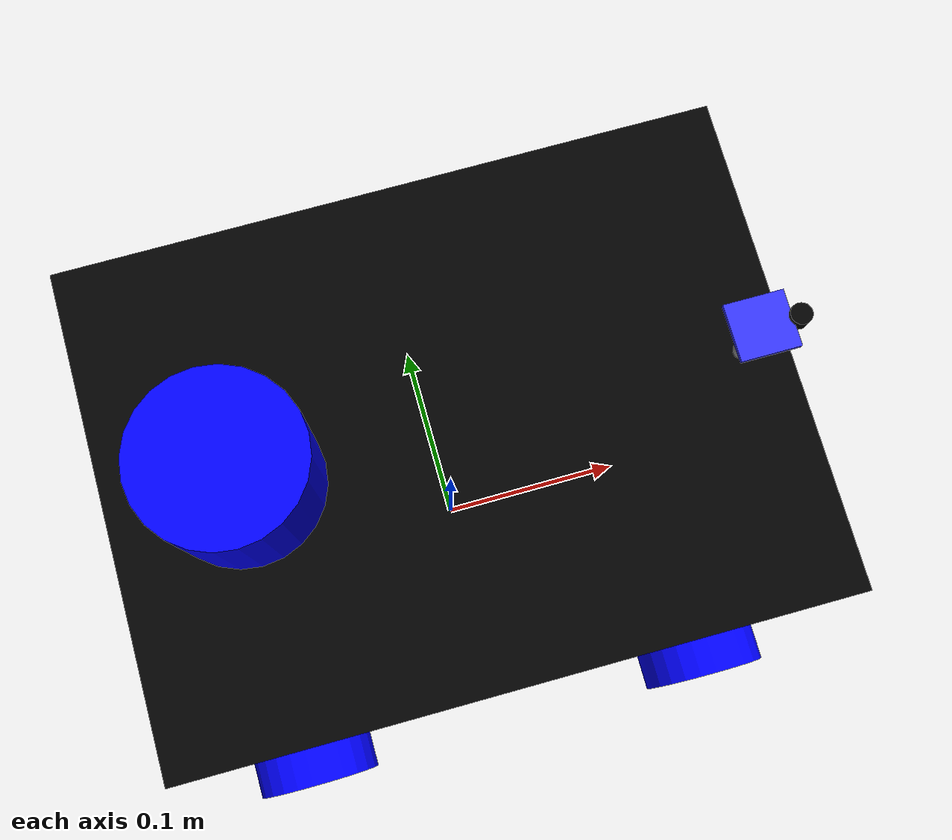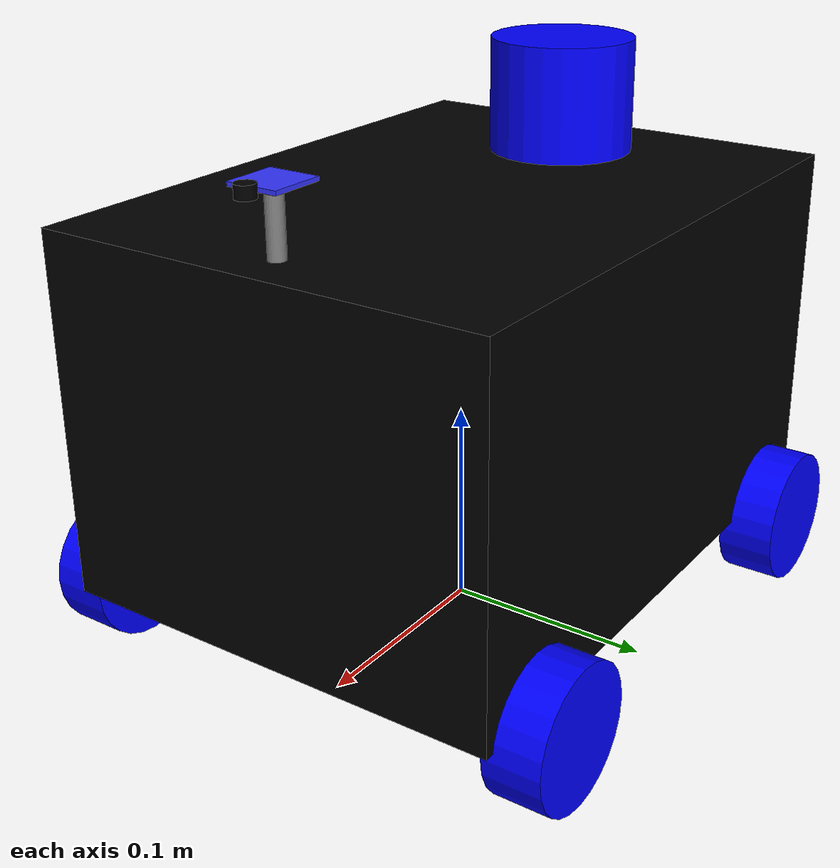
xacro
<?xml version="1.0"?>
<robot xmlns:xacro="http://www.ros.org/wiki/xacro"  name="robot">

    <xacro:arg name="use_ros2_control" default="true"/>
    <xacro:arg name="sim_mode" default="false"/>
    <xacro:arg name="include_arm" default="false"/>
    <xacro:arg name="controllers_file" default="$(find articubot_one)/config/my_controllers.yaml"/>

    <xacro:include filename="common_properties.xacro" />

    <xacro:include filename="robot_core.xacro" />

    <xacro:property name="imu_offset_x" value="0.0"/>
    <xacro:property name="imu_offset_z" value="${chassis_height/2}"/>
    <xacro:property name="imu_visual_size" value="0.02"/>
    <xacro:include filename="imu.xacro" />

    <xacro:include filename="lidar.xacro" />

    <!-- Camera mount: front of chassis and slightly above top surface. -->
    <xacro:property name="camera_offset_x" value="${(chassis_length / 2.0) - 0.02}"/>
    <xacro:property name="camera_offset_z" value="${chassis_height + 0.032}"/>
    <xacro:include filename="camera.xacro" />

    <xacro:if value="$(arg include_arm)">
        <xacro:include filename="arm.xacro" />
    </xacro:if>
    <xacro:include filename="ros2_control.xacro" />

</robot>

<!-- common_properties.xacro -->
<robot name="xacro_properties" xmlns:xacro="http://ros.org/wiki/xacro">

    <xacro:arg name="sim_mode" default="false"/>

    <material name="white">
        <color rgba="1 1 1 1" />
    </material>

    <material name="black">
        <color rgba="0 0 0 1"/>
    </material>

    <material name="red">
        <color rgba="1 0 0 1"/>
    </material>

    <material name="orange">
        <color rgba="1 0.3 0.1 1"/>
    </material>

    <material name="green">
        <color rgba="0 1 0 1"/>
    </material>

    <material name="blue">
        <color rgba="0 0 1 1"/>
    </material>

    <material name="grey">
        <color rgba="0.5 0.5 0.5 1"/>
    </material>

    <material name="shadow_grey">
        <color rgba="0.3 0.3 0.3 0.5"/>
    </material>

    <material name="sensor_blue">
        <color rgba="0.2 0.2 1 1"/>
    </material>

    <material name="sensor_yellow">
        <color rgba="0.8 0.8 0.2 1"/>
    </material>

    <material name="body_color">
        <color rgba="0.1 0.1 0.1 1"/> </material>

    <material name="port_red">
        <color rgba="1 0.2 0.2 1"/>
    </material>

    <material name="starboard_green">
        <color rgba="0.2 1 0.2 1"/>
    </material>

</robot>

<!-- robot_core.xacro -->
<robot xmlns:xacro="http://www.ros.org/wiki/xacro" >
    <xacro:include filename="inertial_macros.xacro" />
    <!-- Real hardware body size (base plate). -->
    <xacro:property name="chassis_length" value="0.293"/>
    <!-- Base plate width (no wheels). -->
    <xacro:property name="chassis_width" value="0.22"/>
    <!-- Top of base is ~0.21 m above ground. -->
    <xacro:property name="chassis_height" value="0.1735"/>
    <xacro:property name="chassis_mass" value="3.0"/>
    <xacro:property name="wheel_radius" value="0.0325"/>
    <xacro:property name="wheel_thickness" value="0.027"/>
    <xacro:property name="wheel_mass" value="0.2"/>
    <!-- Wheelbase 0.22 m -> half is 0.11 m. -->
    <xacro:property name="wheel_offset_x" value="0.11"/>
    <!-- Wheel separation 0.236 m -> half is 0.118 m. -->
    <xacro:property name="wheel_offset_y" value="0.118"/>
    <xacro:property name="chassis_ground_clearance" value="0.004"/>

    <link name="base_link"></link>

    <joint name="chassis_joint" type="fixed">
        <parent link="base_link"/>
        <child link="chassis"/>
        <origin xyz="0 0 ${wheel_radius + chassis_ground_clearance}"/>
    </joint>

    <link name="chassis">
        <visual>
            <origin xyz="0 0 ${chassis_height/2}"/>
            <geometry><box size="${chassis_length} ${chassis_width} ${chassis_height}"/></geometry>
            <material name="black"/>
        </visual>
        <collision>
            <origin xyz="0 0 ${chassis_height/2}"/>
            <geometry><box size="${chassis_length} ${chassis_width} ${chassis_height}"/></geometry>
        </collision>
        <xacro:inertial_box mass="${chassis_mass}" x="${chassis_length}" y="${chassis_width}" z="${chassis_height}">
            <origin xyz="0 0 ${chassis_height/2}" rpy="0 0 0"/>
        </xacro:inertial_box>
    </link>

    <xacro:macro name="wheel" params="prefix x_reflect y_reflect">
        <joint name="${prefix}_wheel_joint" type="continuous">
            <parent link="base_link"/>
            <child link="${prefix}_wheel"/>
            <origin xyz="${x_reflect*wheel_offset_x} ${y_reflect*wheel_offset_y} ${wheel_radius}" rpy="${-pi/2} 0 0" />
            <axis xyz="0 0 1"/>
            <dynamics damping="0.2" friction="0.05"/>
        </joint>
        <link name="${prefix}_wheel">
            <visual>
                <geometry><cylinder radius="${wheel_radius}" length="${wheel_thickness}"/></geometry>
                <material name="blue"/>
            </visual>
            <collision>
                <geometry><cylinder radius="${wheel_radius}" length="${wheel_thickness}"/></geometry>
            </collision>
            <xacro:inertial_cylinder mass="${wheel_mass}" length="${wheel_thickness}" radius="${wheel_radius}">
                <origin xyz="0 0 0" rpy="0 0 0"/>
            </xacro:inertial_cylinder>
        </link>
        <gazebo reference="${prefix}_wheel">
            <material>Gazebo/Blue</material>
            <!-- Skid-steer tuning: allow controlled lateral slip so turning matches odometry better. -->
            <mu1>0.7</mu1>
            <mu2>0.5</mu2>
            <slip1>0.02</slip1>
            <slip2>0.12</slip2>
            <kp>1000000.0</kp>
            <kd>1.0</kd>
        </gazebo>
    </xacro:macro>

    <xacro:wheel prefix="front_left" x_reflect="1" y_reflect="1" />
    <xacro:wheel prefix="front_right" x_reflect="1" y_reflect="-1" />
    <xacro:wheel prefix="rear_left" x_reflect="-1" y_reflect="1" />
    <xacro:wheel prefix="rear_right" x_reflect="-1" y_reflect="-1" />

    <gazebo reference="chassis"><material>Gazebo/Black</material></gazebo>

</robot>

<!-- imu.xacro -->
<robot xmlns:xacro="http://www.ros.org/wiki/xacro" >

    <joint name="imu_joint" type="fixed">
        <parent link="chassis"/>
        <child link="imu_link"/>
        <origin xyz="${imu_offset_x} 0 ${imu_offset_z}" rpy="0 0 0"/>
    </joint>

    <link name="imu_link">
        <visual>
            <geometry>
                <box size="${imu_visual_size} ${imu_visual_size} ${imu_visual_size}"/>
            </geometry>
            <material name="sensor_blue"/>
        </visual>
        <collision>
            <geometry>
                <box size="${imu_visual_size} ${imu_visual_size} ${imu_visual_size}"/>
            </geometry>
        </collision>
        <xacro:inertial_box mass="0.01" x="${imu_visual_size}" y="${imu_visual_size}" z="${imu_visual_size}">
            <origin xyz="0 0 0" rpy="0 0 0"/>
        </xacro:inertial_box>
    </link>

    <gazebo reference="imu_link">
        <sensor name="imu_link" type="imu">
        <pose>0 0 0 0 0 0</pose>
        <always_on>1</always_on>

        <topic>gz_imu/data</topic>

        <gz_frame_id>imu_link</gz_frame_id>
        <frame_id>imu_link</frame_id>
        <update_rate>250</update_rate>
            <imu>
                <orientation_reference_frame>
                  <localization>ENU</localization>
                  </orientation_reference_frame>
                <enable_orientation>1</enable_orientation>
                <angular_velocity>
                    <x>
                        <noise type="gaussian">
                            <mean>0</mean>
                            <stddev>0.009</stddev>
                            <bias_mean>0.00075</bias_mean>
                            <bias_stddev>0.005</bias_stddev>
                            <dynamic_bias_stddev>0.00002</dynamic_bias_stddev>
                            <dynamic_bias_correlation_time>400.0</dynamic_bias_correlation_time>
                            <precision>0.00025</precision>
                        </noise>
                    </x>
                    <y>
                        <noise type="gaussian">
                            <mean>0</mean>
                            <stddev>0.009</stddev>
                            <bias_mean>0.00075</bias_mean>
                            <bias_stddev>0.005</bias_stddev>
                            <dynamic_bias_stddev>0.00002</dynamic_bias_stddev>
                            <dynamic_bias_correlation_time>400.0</dynamic_bias_correlation_time>
                            <precision>0.00025</precision>
                        </noise>
                    </y>
                    <z>
                        <noise type="gaussian">
                            <mean>0</mean>
                            <stddev>0.009</stddev>
                            <bias_mean>0.00075</bias_mean>
                            <bias_stddev>0.005</bias_stddev>
                            <dynamic_bias_stddev>0.00002</dynamic_bias_stddev>
                            <dynamic_bias_correlation_time>400.0</dynamic_bias_correlation_time>
                            <precision>0.00025</precision>
                        </noise>
                    </z>
                </angular_velocity>
                <linear_acceleration>
                    <x>
                        <noise type="gaussian">
                            <mean>0</mean>
                            <stddev>0.021</stddev>
                            <bias_mean>0.05</bias_mean>
                            <bias_stddev>0.0075</bias_stddev>
                            <dynamic_bias_stddev>0.000375</dynamic_bias_stddev>
                            <dynamic_bias_correlation_time>175.0</dynamic_bias_correlation_time>
                            <precision>0.005</precision>
                        </noise>
                    </x>
                    <y>
                        <noise type="gaussian">
                            <mean>0</mean>
                            <stddev>0.021</stddev>
                            <bias_mean>0.05</bias_mean>
                            <bias_stddev>0.0075</bias_stddev>
                            <dynamic_bias_stddev>0.000375</dynamic_bias_stddev>
                            <dynamic_bias_correlation_time>175.0</dynamic_bias_correlation_time>
                            <precision>0.005</precision>
                        </noise>
                    </y>
                    <z>
                        <noise type="gaussian">
                            <mean>0</mean>
                            <stddev>0.021</stddev>
                            <bias_mean>0.05</bias_mean>
                            <bias_stddev>0.0075</bias_stddev>
                            <dynamic_bias_stddev>0.000375</dynamic_bias_stddev>
                            <dynamic_bias_correlation_time>175.0</dynamic_bias_correlation_time>
                            <precision>0.005</precision>
                        </noise>
                    </z>
                </linear_acceleration>
            </imu>
        </sensor>

        <sensor name="magnetometer" type="magnetometer">
          <pose>0 0 0 0 0 0</pose>
          <always_on>1</always_on>
          <update_rate>100</update_rate>
          <visualize>true</visualize>
          <topic>gz_magnetometer/data</topic>
          <gz_frame_id>imu_link</gz_frame_id>
          <frame_id>imu_link</frame_id>
          <enable_metrics>true</enable_metrics>
          <magnetometer>
            <x>
              <noise type="gaussian">
                <mean>0.0</mean>
                <stddev>0.001</stddev>
              </noise>
            </x>
            <y>
              <noise type="gaussian">
                <mean>0.0</mean>
                <stddev>0.001</stddev>
              </noise>
            </y>
            <z>
              <noise type="gaussian">
                <mean>0.0</mean>
                <stddev>0.001</stddev>
              </noise>
            </z>
          </magnetometer>
        </sensor>
    </gazebo>

</robot>

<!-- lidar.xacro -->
<robot xmlns:xacro="http://www.ros.org/wiki/xacro" >

    <xacro:arg name="lidar_offset_x" default="-0.0885"/>
    <xacro:arg name="lidar_offset_y" default="0.0"/>
    <!-- Relative height above chassis top (meters), to LiDAR center. -->
    <xacro:arg name="lidar_offset_z" default="0.0275"/>
    <!-- Yaw of the physical LiDAR mounting relative to the robot front. -->
    <xacro:arg name="lidar_yaw" default="0.0"/>
    <xacro:arg name="lidar_min_angle" default="-3.14159"/>
    <xacro:arg name="lidar_max_angle" default="3.14159"/>
    <xacro:property name="lidar_offset_x_val" value="$(arg lidar_offset_x)"/>
    <xacro:property name="lidar_offset_y_val" value="$(arg lidar_offset_y)"/>
    <xacro:property name="lidar_offset_z_val" value="$(arg lidar_offset_z)"/>
    <xacro:property name="lidar_yaw_val" value="$(arg lidar_yaw)"/>
    <!-- RPLidar A1 physical envelope from provided dimensions: 70mm diameter, ~55mm height. -->
    <xacro:property name="lidar_body_radius" value="0.035"/>
    <xacro:property name="lidar_body_height" value="0.055"/>
    <xacro:property name="lidar_body_mass" value="0.17"/>

    <joint name="laser_joint" type="fixed">
        <parent link="chassis"/>
        <child link="laser_frame"/>
        <origin xyz="${lidar_offset_x_val} ${lidar_offset_y_val} ${chassis_height + lidar_offset_z_val}" rpy="0 0 ${lidar_yaw_val}"/>
    </joint>
    <gazebo reference="laser_joint">
    <preserveFixedJoint>true</preserveFixedJoint>
    </gazebo>

    <link name="laser_frame">
        <visual>
            <geometry>
                <cylinder radius="${lidar_body_radius}" length="${lidar_body_height}"/>
            </geometry>
            <material name="blue"/>
        </visual>
        <collision>
            <geometry>
                <cylinder radius="${lidar_body_radius}" length="${lidar_body_height}"/>
            </geometry>
        </collision>
        <xacro:inertial_cylinder mass="${lidar_body_mass}" length="${lidar_body_height}" radius="${lidar_body_radius}">
            <origin xyz="0 0 0" rpy="0 0 0"/>
        </xacro:inertial_cylinder>
    </link>

    <gazebo reference="laser_frame">
        <material>Gazebo/Blue</material>
    </gazebo>

    <gazebo reference="laser_frame">
        <sensor name='laser_sensor' type='gpu_lidar'>
          <pose>0 0 0 0 0 0</pose>
          <always_on>1</always_on>
          <!-- Stable sim profile for mapping: more temporal samples during turns. -->
          <update_rate>12.0</update_rate>
          <topic>/scan</topic>
          <gz_frame_id>laser_frame</gz_frame_id>
          <frame_id>laser_frame</frame_id>
          <visualize>false</visualize> <ray>
            <scan>
              <horizontal>
                <!-- 360 samples/scan @ 12Hz gives cleaner scan matching during turns. -->
                <samples>360</samples>
                <resolution>1</resolution>
                <min_angle>$(arg lidar_min_angle)</min_angle>
                <max_angle>$(arg lidar_max_angle)</max_angle>
              </horizontal>
            </scan>
            <range>
              <min>0.15</min> <max>6.0</max>
              <resolution>0.01</resolution>
            </range>
            <noise>
              <type>gaussian</type>
              <mean>0.0</mean>
              <stddev>0.005</stddev>
            </noise>
          </ray>
        </sensor>
    </gazebo>

</robot>

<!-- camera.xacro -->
<robot xmlns:xacro="http://www.ros.org/wiki/xacro" >
    <!-- Raspberry Pi Camera v2.1 approximate body dimensions. -->
    <xacro:property name="pi_cam_board_x" value="0.025"/>
    <xacro:property name="pi_cam_board_y" value="0.024"/>
    <xacro:property name="pi_cam_board_z" value="0.002"/>
    <xacro:property name="pi_cam_lens_radius" value="0.0045"/>
    <xacro:property name="pi_cam_lens_length" value="0.006"/>
    <xacro:property name="pi_cam_support_radius" value="0.004"/>
    <xacro:property name="pi_cam_support_length" value="0.030"/>

    <joint name="camera_joint" type="fixed">
      <parent link="chassis"/>
         <child link="camera_link"/>
         <origin xyz="${camera_offset_x} 0 ${camera_offset_z}" rpy="0 0 0"/>
    </joint>

    <link name="camera_link">
        <visual>
            <geometry>
                <box size="${pi_cam_board_x} ${pi_cam_board_y} ${pi_cam_board_z}"/>
            </geometry>
            <material name="blue">
                 <color rgba="0.2 0.2 1 1"/>
            </material>
        </visual>
        <visual>
            <origin xyz="${pi_cam_board_x/2 + pi_cam_lens_length/2} 0 0"/>
            <geometry>
                <cylinder radius="${pi_cam_lens_radius}" length="${pi_cam_lens_length}"/>
            </geometry>
            <material name="black"/>
        </visual>
        <visual>
            <origin xyz="0 0 ${-(pi_cam_support_length/2 + pi_cam_board_z/2)}"/>
            <geometry>
                <cylinder radius="${pi_cam_support_radius}" length="${pi_cam_support_length}"/>
            </geometry>
            <material name="grey"/>
        </visual>
        <collision>
            <geometry>
                <box size="${pi_cam_board_x} ${pi_cam_board_y} ${pi_cam_board_z}"/>
            </geometry>
        </collision>
        <collision>
            <origin xyz="${pi_cam_board_x/2 + pi_cam_lens_length/2} 0 0"/>
            <geometry>
                <cylinder radius="${pi_cam_lens_radius}" length="${pi_cam_lens_length}"/>
            </geometry>
        </collision>
        <collision>
            <origin xyz="0 0 ${-(pi_cam_support_length/2 + pi_cam_board_z/2)}"/>
            <geometry>
                <cylinder radius="${pi_cam_support_radius}" length="${pi_cam_support_length}"/>
            </geometry>
        </collision>
        <xacro:inertial_box mass="0.01" x="${pi_cam_board_x}" y="${pi_cam_board_y}" z="${pi_cam_board_z}">
            <origin xyz="0 0 0" rpy="0 0 0"/>
        </xacro:inertial_box>
    </link>

    <joint name="camera_optical_joint" type="fixed">
        <parent link="camera_link"/>
        <child link="camera_link_optical"/>
        <origin xyz="0 0 0" rpy="${-pi/2} 0 ${-pi/2}"/>
    </joint>

    <link name="camera_link_optical">
    </link>

    <gazebo reference="camera_link">
        <sensor name='rgb_camera' type='camera'>
            <pose>0 0 0 0 0 0</pose>
            <visualize>true</visualize>
            <update_rate>10</update_rate>

            <topic>camera/image_raw</topic>
            <gz_frame_id>camera_link_optical</gz_frame_id>
            <camera name='__default__'>
                <horizontal_fov>1.089</horizontal_fov>
                <image>
                    <width>640</width>
                    <height>480</height>
                    <format>R8G8B8</format>
                </image>
                <clip>
                    <near>0.05</near>
                    <far>8.0</far>
                </clip>
                <optical_frame_id>camera_link_optical</optical_frame_id>
            </camera>

            </sensor>
    </gazebo>

</robot>
